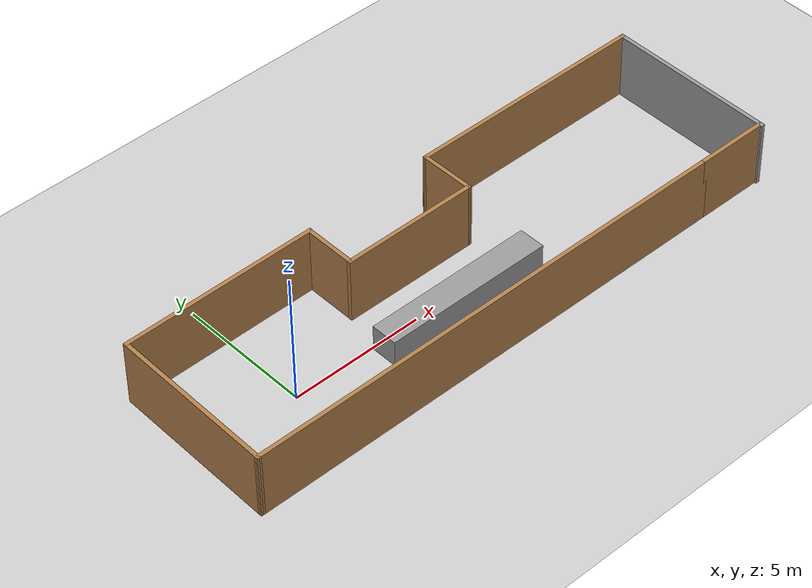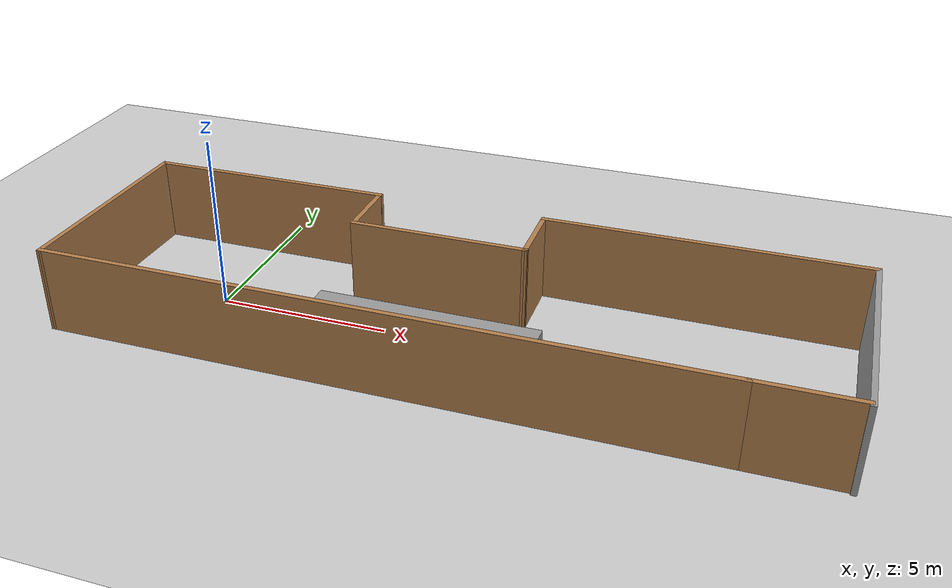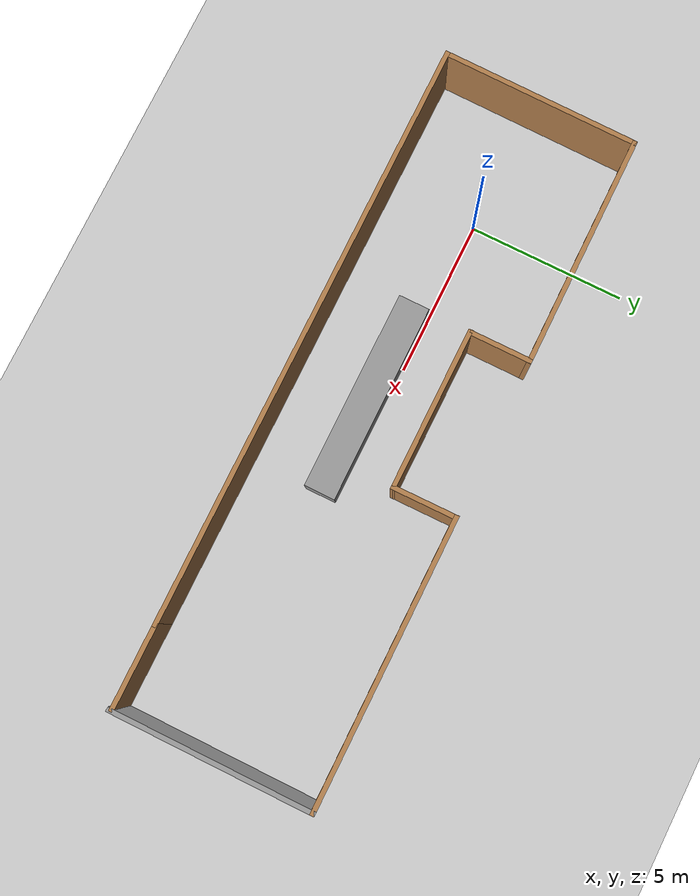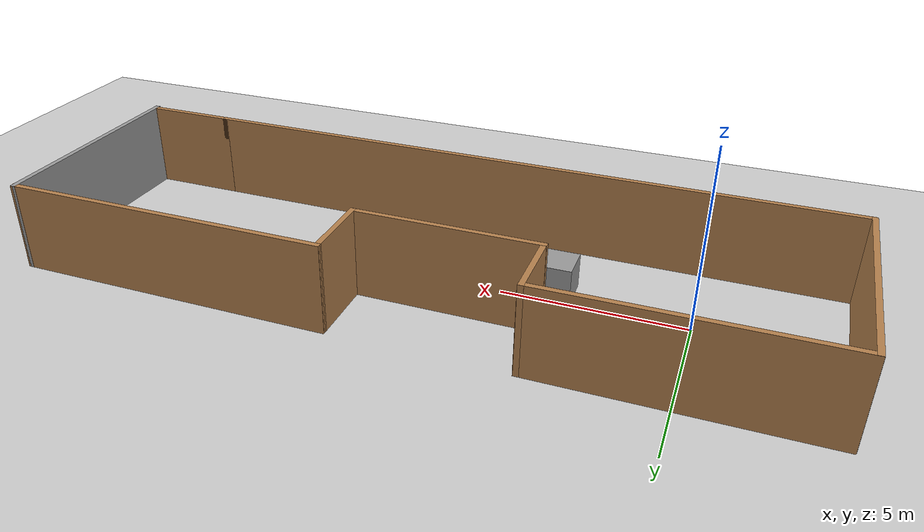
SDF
<sdf version="1.6">
 <world name="default">
  <light name="sun" type="directional">
   <pose>0 0 10 0 -0 0</pose>
   <diffuse>0.8 0.8 0.8 1</diffuse>
   <specular>0.2 0.2 0.2 1</specular>
   <attenuation>
    <range>1000</range>
    <constant>0.9</constant>
    <linear>0.01</linear>
    <quadratic>0.001</quadratic>
   </attenuation>
   <direction>-0.5 0.1 -0.9</direction>
  </light>
  <model name="ground_plane">
   <static>1</static>
   <link name="link">
    <collision name="collision">
     <geometry><plane><normal>0 0 1</normal><size>100 100</size></plane></geometry>
     <surface>
      <contact><collide_bitmask>65535</collide_bitmask></contact>
      <friction><ode><mu>100</mu><mu2>50</mu2></ode></friction>
     </surface>
    </collision>
    <visual name="visual">
     <cast_shadows>0</cast_shadows>
     <geometry><plane><normal>0 0 1</normal><size>100 100</size></plane></geometry>
     <material>
      <script><uri>file://media/materials/scripts/gazebo.material</uri><name>Gazebo/Grey</name></script>
     </material>
    </visual>
   </link>
  </model>
  <gravity>0 0 -9.8</gravity>
  <magnetic_field>6e-06 2.3e-05 -4.2e-05</magnetic_field>
  <atmosphere type="adiabatic"/>
  <physics name="default_physics" default="0" type="ode">
   <max_step_size>0.001</max_step_size>
   <real_time_factor>1</real_time_factor>
   <real_time_update_rate>1000</real_time_update_rate>
  </physics>
  <scene><ambient>0.4 0.4 0.4 1</ambient><background>0.7 0.7 0.7 1</background><shadows>1</shadows></scene>
  <audio><device>default</device></audio>
  <spherical_coordinates>
   <surface_model>EARTH_WGS84</surface_model>
   <latitude_deg>0</latitude_deg>
   <longitude_deg>0</longitude_deg>
   <elevation>0</elevation>
   <heading_deg>0</heading_deg>
  </spherical_coordinates>
  <model name="Untitled033">
   <pose>6.94039 0.24082 0 0 -0 0</pose>
   <link name="Wall_0">
    <collision name="Wall_0_Collision">
     <geometry><box><size>7.45691 0.15 2.5</size></box></geometry>
     <pose>0 0 1.25 0 -0 0</pose>
    </collision>
    <visual name="Wall_0_Visual">
     <pose>0 0 1.25 0 -0 0</pose>
     <geometry><box><size>7.45691 0.15 2.5</size></box></geometry>
     <material>
      <script><uri>file://media/materials/scripts/gazebo.material</uri><name>Gazebo/Wood</name></script>
      <ambient>1 1 1 1</ambient>
     </material>
     <meta><layer>0</layer></meta>
    </visual>
    <pose>-7.02271 3.10131 0 0 -0 0.003166</pose>
   </link>
   <link name="Wall_14">
    <collision name="Wall_14_Collision">
     <geometry><box><size>9.25 0.15 2.5</size></box></geometry>
     <pose>0 0 1.25 0 -0 0</pose>
    </collision>
    <visual name="Wall_14_Visual">
     <pose>0 0 1.25 0 -0 0</pose>
     <geometry><box><size>9.25 0.15 2.5</size></box></geometry>
     <material>
      <script><uri>file://media/materials/scripts/gazebo.material</uri><name>Gazebo/Wood</name></script>
      <ambient>1 1 1 1</ambient>
     </material>
     <meta><layer>0</layer></meta>
    </visual>
    <pose>6.20215 3.175 0 0 -0 0</pose>
   </link>
   <link name="Wall_16">
    <collision name="Wall_16_Collision">
     <geometry><box><size>19 0.15 2.5</size></box></geometry>
     <pose>0 0 1.25 0 -0 0</pose>
    </collision>
    <visual name="Wall_16_Visual">
     <pose>0 0 1.25 0 -0 0</pose>
     <geometry><box><size>19 0.15 2.5</size></box></geometry>
     <material>
      <script><uri>file://media/materials/scripts/gazebo.material</uri><name>Gazebo/Wood</name></script>
      <ambient>1 1 1 1</ambient>
     </material>
     <meta><layer>0</layer></meta>
    </visual>
    <pose>-1.32634 -3.11274 0 0 -0 0</pose>
   </link>
   <link name="Wall_18">
    <collision name="Wall_18_Collision">
     <geometry><box><size>2.75 0.15 2.5</size></box></geometry>
     <pose>0 0 1.25 0 -0 0</pose>
    </collision>
    <visual name="Wall_18_Visual">
     <pose>0 0 1.25 0 -0 0</pose>
     <geometry><box><size>2.75 0.15 2.5</size></box></geometry>
     <material>
      <script><uri>file://media/materials/scripts/gazebo.material</uri><name>Gazebo/Wood</name></script>
      <ambient>1 1 1 1</ambient>
     </material>
     <meta><layer>0</layer></meta>
    </visual>
    <pose>9.39866 -3.11274 0 0 -0 0</pose>
   </link>
   <link name="Wall_2">
    <collision name="Wall_2_Collision">
     <geometry><box><size>6.34533 0.15 2.5</size></box></geometry>
     <pose>0 0 1.25 0 -0 0</pose>
    </collision>
    <visual name="Wall_2_Visual">
     <pose>0 0 1.25 0 -0 0</pose>
     <geometry><box><size>6.34533 0.15 2.5</size></box></geometry>
     <material>
      <script><uri>file://media/materials/scripts/gazebo.material</uri><name>Gazebo/Wood</name></script>
      <ambient>1 1 1 1</ambient>
     </material>
     <meta><layer>0</layer></meta>
    </visual>
    <pose>-10.7175 -0.015256 0 0 -0 -1.58172</pose>
   </link>
   <link name="Wall_27">
    <collision name="Wall_27_Collision">
     <geometry><box><size>6.5 0.15 2.5</size></box></geometry>
     <pose>0 0 1.25 0 -0 0</pose>
    </collision>
    <visual name="Wall_27_Visual">
     <pose>0 0 1.25 0 -0 0</pose>
     <geometry><box><size>6.5 0.15 2.5</size></box></geometry>
     <material>
      <script><uri>file://media/materials/scripts/gazebo.material</uri><name>Gazebo/Grey</name></script>
      <ambient>1 1 1 1</ambient>
     </material>
     <meta><layer>0</layer></meta>
    </visual>
    <pose>10.7522 0 0 0 -0 -1.5708</pose>
   </link>
   <link name="Wall_5">
    <collision name="Wall_5_Collision">
     <geometry><box><size>5.2 0.15 2.5</size></box></geometry>
     <pose>0 0 1.25 0 -0 0</pose>
    </collision>
    <visual name="Wall_5_Visual">
     <pose>0 0 1.25 0 -0 0</pose>
     <geometry><box><size>5.2 0.15 2.5</size></box></geometry>
     <material>
      <script><uri>file://media/materials/scripts/gazebo.material</uri><name>Gazebo/Wood</name></script>
      <ambient>1 1 1 1</ambient>
     </material>
     <meta><layer>0</layer></meta>
    </visual>
    <pose>-0.857812 1.18966 0 0 -0 0</pose>
   </link>
   <link name="Wall_7">
    <collision name="Wall_7_Collision">
     <geometry><box><size>2 0.15 2.5</size></box></geometry>
     <pose>0 0 1.25 0 -0 0</pose>
    </collision>
    <visual name="Wall_7_Visual">
     <pose>0 0 1.25 0 -0 0</pose>
     <geometry><box><size>2 0.15 2.5</size></box></geometry>
     <material>
      <script><uri>file://media/materials/scripts/gazebo.material</uri><name>Gazebo/Wood</name></script>
      <ambient>1 1 1 1</ambient>
     </material>
     <meta><layer>0</layer></meta>
    </visual>
    <pose>-3.37674 2.18811 0 0 -0 -1.5708</pose>
   </link>
   <link name="Wall_9">
    <collision name="Wall_9_Collision">
     <geometry><box><size>2.12788 0.15 2.5</size></box></geometry>
     <pose>0 0 1.25 0 -0 0</pose>
    </collision>
    <visual name="Wall_9_Visual">
     <pose>0 0 1.25 0 -0 0</pose>
     <geometry><box><size>2.12788 0.15 2.5</size></box></geometry>
     <material>
      <script><uri>file://media/materials/scripts/gazebo.material</uri><name>Gazebo/Wood</name></script>
      <ambient>1 1 1 1</ambient>
     </material>
     <meta><layer>0</layer></meta>
    </visual>
    <pose>1.65967 2.17857 0 0 -0 1.5784</pose>
   </link>
   <static>1</static>
  </model>
  <model name="unit_box">
   <pose>6.34928 -0.544297 0.493484 1e-06 0.00203 0.000257</pose>
   <link name="link">
    <inertial>
     <mass>1</mass>
     <inertia>
      <ixx>0.166667</ixx>
      <ixy>0</ixy>
      <ixz>0</ixz>
      <iyy>0.166667</iyy>
      <iyz>0</iyz>
      <izz>0.166667</izz>
     </inertia>
    </inertial>
    <collision name="collision"><geometry><box><size>6.42383 1 1</size></box></geometry></collision>
    <visual name="visual">
     <geometry><box><size>6.42383 1 1</size></box></geometry>
     <material>
      <script><name>Gazebo/Grey</name><uri>file://media/materials/scripts/gazebo.material</uri></script>
     </material>
    </visual>
   </link>
  </model>
 </world>
</sdf>
